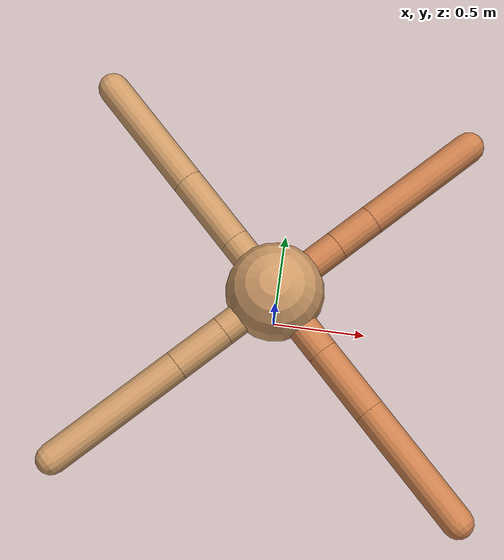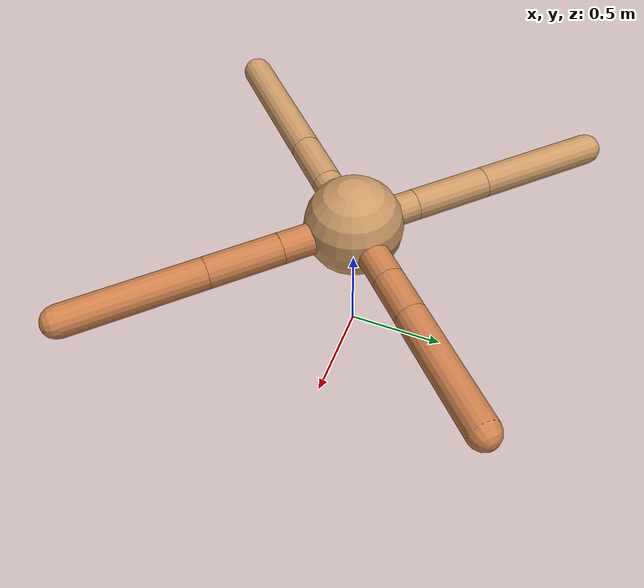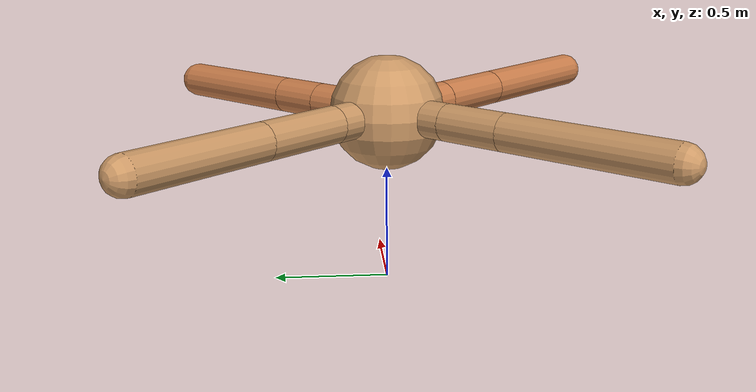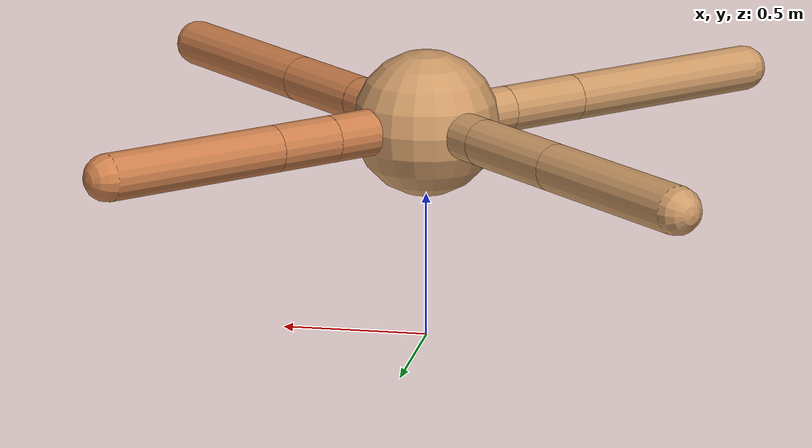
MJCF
<mujoco model="ant">
  <compiler angle="degree" coordinate="local" inertiafromgeom="true" />
  <option integrator="RK4" timestep="0.01" />
  <custom>
    <numeric data="0.0 0.0 0.55 1.0 0.0 0.0 0.0 0.0 1.0 0.0 -1.0 0.0 -1.0 0.0 1.0" name="init_qpos" />
  </custom>
  <default>
    <joint armature="1" damping="1" limited="true" />
    <geom conaffinity="0" condim="3" density="5.0" friction="1.5 0.1 0.1" margin="0.01" rgba="0.8 0.6 0.4 1" />
  </default>
  <worldbody>
    <body name="torso" pos="0 0 0.75">
      <geom name="torso_geom" pos="0 0 0" size="0.25" type="sphere" />

      <body name="front_left_leg" pos="0 0 0">
        <geom fromto="0.0 0.0 0.0 0.27658305828160723 0.27658305828160723 0.0" name="aux_1_geom" size="0.08" type="capsule" rgba=".8 .5 .3 1" />
        <body name="aux_1" pos="0.27658305828160723 0.27658305828160723 0.0">
          <joint axis="0 0 1" name="hip_1" pos="0.0 0.0 0.0" range="-40 40" type="hinge" />
          <geom fromto="0.0 0.0 0.0 0.15882264908504407 0.15882264908504407 0.0" name="left_leg_geom" size="0.08" type="capsule" rgba=".8 .5 .3 1" />
          <body pos="0.15882264908504407 0.15882264908504407 0.0" name="front_left_foot">
            <joint axis="-1 1 0" name="ankle_1" pos="0.0 0.0 0.0" range="30 100" type="hinge" />
            <geom fromto="0.0 0.0 0.0 0.45170865544080013 0.45170865544080013 0.0" name="left_ankle_geom" size="0.08" type="capsule" rgba=".8 .5 .3 1" />
          </body>
        </body>
      </body>
      <body name="front_right_leg" pos="0 0 0">
        <geom fromto="0.0 0.0 0.0 -0.23729464560602082 0.23729464560602082 0.0" name="aux_2_geom" size="0.08" type="capsule" />
        <body name="aux_2" pos="-0.23729464560602082 0.23729464560602082 0.0">
          <joint axis="0 0 1" name="hip_2" pos="0.0 0.0 0.0" range="-40 40" type="hinge" />
          <geom fromto="0.0 0.0 0.0 -0.2799775528705221 0.2799775528705221 0.0" name="right_leg_geom" size="0.08" type="capsule" />
          <body pos="-0.2799775528705221 0.2799775528705221 0.0" name="front_right_foot">
            <joint axis="1 1 0" name="ankle_2" pos="0.0 0.0 0.0" range="-100 -30" type="hinge" />
            <geom fromto="0.0 0.0 0.0 -0.45193973283909145 0.45193973283909145 0.0" name="right_ankle_geom" size="0.08" type="capsule" />
          </body>
        </body>
      </body>
      <body name="left_back_leg" pos="0 0 0">
        <geom fromto="0.0 0.0 0.0 -0.23359814969931955 -0.23359814969931955 0.0" name="aux_3_geom" size="0.08" type="capsule" />
        <body name="aux_3" pos="-0.23359814969931955 -0.23359814969931955 0.0">
          <joint axis="0 0 1" name="hip_3" pos="0.0 0.0 0.0" range="-40 40" type="hinge" />
          <geom fromto="0.0 0.0 0.0 -0.20309026148742057 -0.20309026148742057 0.0" name="back_leg_geom" size="0.08" type="capsule" />
          <body pos="-0.20309026148742057 -0.20309026148742057 0.0" name="left_back_foot">
            <joint axis="-1 1 0" name="ankle_3" pos="0.0 0.0 0.0" range="-100 -30" type="hinge" />
            <geom fromto="0.0 0.0 0.0 -0.5387855936733705 -0.5387855936733705 0.0" name="third_ankle_geom" size="0.08" type="capsule" />
          </body>
        </body>
      </body>
      <body name="right_back_leg" pos="0 0 0">
        <geom fromto="0.0 0.0 0.0 0.27562935030010205 -0.27562935030010205 0.0" name="aux_4_geom" size="0.08" type="capsule" rgba=".8 .5 .3 1" />
        <body name="aux_4" pos="0.27562935030010205 -0.27562935030010205 0.0">
          <joint axis="0 0 1" name="hip_4" pos="0.0 0.0 0.0" range="-40 40" type="hinge" />
          <geom fromto="0.0 0.0 0.0 0.26321649781626194 -0.26321649781626194 0.0" name="rightback_leg_geom" size="0.08" type="capsule" rgba=".8 .5 .3 1" />
          <body pos="0.26321649781626194 -0.26321649781626194 0.0" name="right_back_foot">
            <joint axis="1 1 0" name="ankle_4" pos="0.0 0.0 0.0" range="30 100" type="hinge" />
            <geom fromto="0.0 0.0 0.0 0.4881276328752844 -0.4881276328752844 0.0" name="fourth_ankle_geom" size="0.08" type="capsule" rgba=".8 .5 .3 1" />
          </body>
        </body>
      </body>
    </body>
  </worldbody>
  <actuator>
    <motor ctrllimited="true" ctrlrange="-1.0 1.0" joint="hip_4" gear="150" />
    <motor ctrllimited="true" ctrlrange="-1.0 1.0" joint="ankle_4" gear="150" />
    <motor ctrllimited="true" ctrlrange="-1.0 1.0" joint="hip_1" gear="150" />
    <motor ctrllimited="true" ctrlrange="-1.0 1.0" joint="ankle_1" gear="150" />
    <motor ctrllimited="true" ctrlrange="-1.0 1.0" joint="hip_2" gear="150" />
    <motor ctrllimited="true" ctrlrange="-1.0 1.0" joint="ankle_2" gear="150" />
    <motor ctrllimited="true" ctrlrange="-1.0 1.0" joint="hip_3" gear="150" />
    <motor ctrllimited="true" ctrlrange="-1.0 1.0" joint="ankle_3" gear="150" />
  </actuator>
</mujoco>
